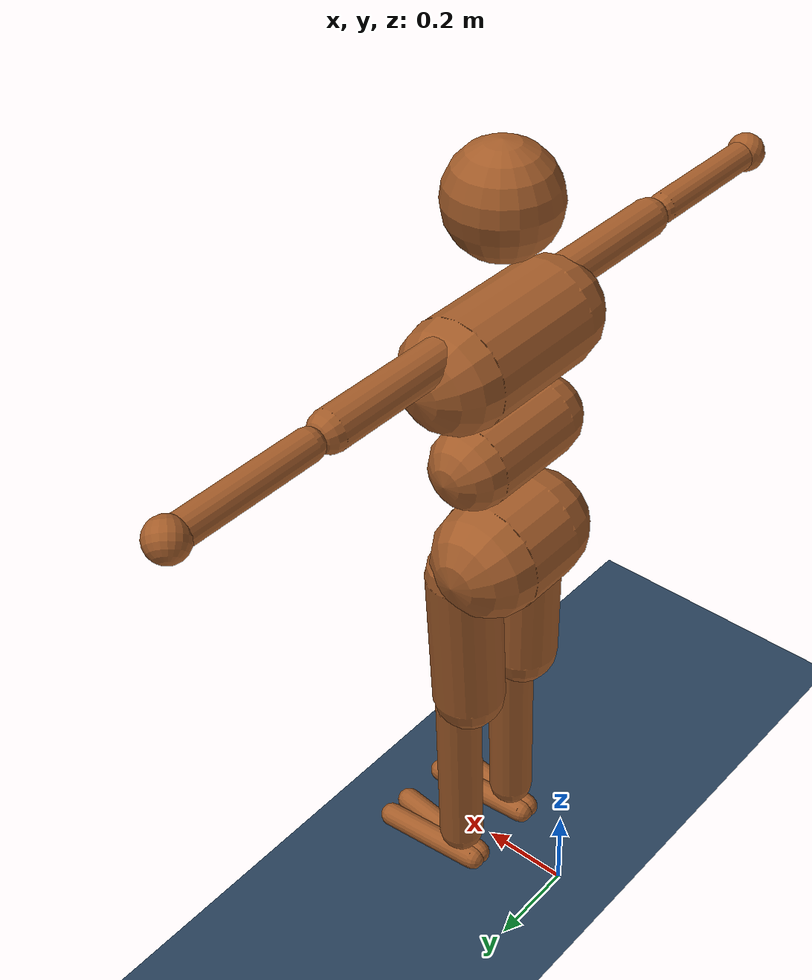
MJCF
<mujoco model="Alfi's Humanoid">
  <option timestep="0.002"/>
  <visual>
    <map force="0.1" zfar="30"/>
    <rgba haze="0.15 0.25 0.35 1"/>
    <global offwidth="2560" offheight="1440" elevation="-20" azimuth="120"/>
  </visual>
  <statistic center="0 0 0.7"/>
  <asset>
    <texture type="skybox" builtin="gradient" rgb1=".3 .5 .7" rgb2="0 0 0" width="32" height="512"/>
    <texture name="body" type="cube" builtin="flat" mark="cross" width="128" height="128" rgb1="0.8 0.6 0.4" rgb2="0.8 0.6 0.4" markrgb="1 1 1" random="0.01"/>
    <material name="body" texture="body" texuniform="true" rgba="0.8 0.6 .4 1"/>
    <texture name="grid" type="2d" builtin="checker" width="512" height="512" rgb1=".1 .2 .3" rgb2=".2 .3 .4"/>
    <material name="grid" texture="grid" texrepeat="1 1" texuniform="true" reflectance=".2"/>
  </asset>

  <default>
    <motor ctrlrange="-1 1" ctrllimited="true"/>
    <default class="body">
      <!-- geoms -->
      <geom type="capsule" condim="1" friction=".7" solimp=".9 .99 .003" solref=".015 1" material="body"/>
      <default class="thigh">
        <geom size=".078"/>
      </default>
      <default class="shin">
        <geom fromto="0 0 0 0 0 -.40182"  size=".05"/>
      </default>
      <default class="foot">
        <geom size=".027" />
        <default class="foot1">
          <geom fromto="-.04 -.01 0 .19 -.03 0"/>
        </default>
        <default class="foot2">
          <geom fromto="-.04 .01 0 .19  .03 0"/>
        </default>
      </default>
      <default class="arm_upper">
        <geom size=".04"/>
      </default>
      <default class="arm_lower">
        <geom size=".031"/>
      </default>
      <default class="hand">
        <geom type="sphere" size=".04"/>
      </default>

      <!-- joints -->
      <joint type="hinge" damping="10" stiffness="5" armature=".01" limited="true" solimplimit="0 .99 .01"/>
      <default class="joint_big">
        <joint damping="5" stiffness="10"/>
        <default class="hip_x">
          <joint range="-30 10"/>
        </default>
        <default class="hip_z">
          <joint range="-60 35"/>
        </default>
        <default class="hip_y">
          <joint axis="0 1 0" range="-150 20"/>
        </default>
        <default class="joint_big_stiff">
          <joint stiffness="20"/>
        </default>
      </default>
      <default class="knee">
        <joint pos="0 0 .02" axis="0 -1 0" range="-160 2"/>
      </default>
      <default class="ankle">
        <joint range="-50 50"/>
        <default class="ankle_y">
          <joint pos="0 0 .08" axis="0 1 0" stiffness="62" damping="60"/>
        </default>
        <default class="ankle_x">
          <joint pos="0 0 .04" stiffness="13"/>
        </default>
      </default>
      <default class="shoulder">
        <joint range="-85 60" damping=".2" stiffness="1"/>
      </default>
      <default class="elbow">
        <joint range="-160 0" stiffness="0"/>
      </default>
    </default>
  </default>

  <worldbody>
    <geom name="floor" size="0 0 .05" type="plane" material="grid" condim="3"/>
    <light name="spotlight" mode="targetbodycom" target="torax" diffuse=".8 .8 .8" specular="0.3 0.3 0.3" pos="0 -6 4" cutoff="30"/>
    <body name="torax" pos="0.165 0 1.396" childclass="body">
      <light name="top" pos="0 0 2" mode="trackcom"/>
      <camera name="back" pos="-3 0 1" xyaxes="0 -1 0 1 0 2" mode="trackcom"/>
      <camera name="side" pos="0 -3 1" xyaxes="1 0 0 0 1 2" mode="trackcom"/>
      <freejoint name="root"/>
      <geom name="torax" fromto="0 -.12875 0 0 .12875 0" size=".11125"/>
      <inertial pos="0 0 0" mass="16.3625" diaginertia="0.673745 0.1234615 0.673745"/>
      <site name="imu" type="sphere" rgba="5 5 5 5"  pos="0 0 0"  size="0.01"/>
      <body name="abdomen">
        <geom name="abdomen" fromto="-.01 -.10125 -.215 -.01 .10125 -.215" size=".085"/>
        <inertial pos="-.01 0 -.215" mass="7.4336" diaginertia="0.1841313 0.0326356 .1841313"/>
      </body>
      <body name="head" pos="0 0 .290">
        <geom name="head" type="sphere" size=".110"/>
        <camera name="egocentric" pos=".09 0 0" xyaxes="0 -1 0 .1 0 1" fovy="80"/>
        <inertial pos="0 0 0" mass="5.6" diaginertia="0.027104 0.027104 0.027104"/>
      </body>
      <body name="pelvis" pos="-0.02 0 -.46">
        <joint name="abdomen_z" pos="0 0 .16" axis="0 0 1" range="-45 3" class="joint_big_stiff"/>
        <joint name="abdomen_y" pos="0 0 .16" axis="0 1 0" range="-75 30" class="joint_big"/>
        <joint name="abdomen_x" pos="0 0 .1" axis="1 0 0" range="-35 35" class="joint_big"/>
        <geom name="butt" fromto="-.0 -.065 0 -.0 .065 0" size=".12"/>
        <inertial pos="0 0 0" mass="13.603889" diaginertia="0.331667 0.130372 0.331667"/>
        <site name="com_accelerometer" type="sphere" rgba="5 5 5 5"  pos="0 0 0"  size="0.01"/>
        <body name="thigh_right" pos="0.04 -.1 -.04">
          <joint name="hip_x_right" axis="1 0 0" class="hip_x" pos="0 0 0.041865"/>
          <joint name="hip_z_right" axis="0 0 1" class="hip_z" pos="0 0 0.041865"/>
          <joint name="hip_y_right" class="hip_y" pos="0 0 0.041865"/>
          <geom name="thigh_right" fromto="0 0 0 0 .01 -.34" class="thigh"/>
          <inertial pos="0 0.005  -0.17" mass="9.6" diaginertia="0.39782263 0.39782263 0.03330608" euler="1.7 0 0"/>
          <body name="shin_right" pos="0.03 .01 -.4" >
            <joint name="knee_right" class="knee"/>
            <geom name="shin_right" class="shin"/>
            <inertial pos="0 0 -0.20091" mass="4" diaginertia="0.14992478 0.14992478 0.00542691"/>
            <body name="foot_right" pos="0 0 -.469">
              <joint name="ankle_y_right" class="ankle_y" pos="0 0 0.06"/>
              <joint name="ankle_x_right" class="ankle_x" axis="1 0 0" pos="0 0 0.06"/>
              <geom name="foot1_right" class="foot1"/>
              <geom name="foot2_right" class="foot2"/>
              <inertial pos="0.075 0 0" mass="1.6" diaginertia="0.009168 0.008528 0.008528"/>
            </body>
          </body>
        </body>
        <body name="thigh_left" pos="0.04 .1 -.04">
          <joint name="hip_x_left" axis="-1 0 0" class="hip_x" pos="0 0 0.041865"/>
          <joint name="hip_z_left" axis="0 0 -1" class="hip_z" pos="0 0 0.041865"/>
          <joint name="hip_y_left" class="hip_y" pos="0 0 0.041865"/>
          <geom name="thigh_left" fromto="0 0 0 0 -.01 -.34" class="thigh"/>
          <inertial pos="0 -0.005  -0.17" mass="9.6" diaginertia="0.39782263 0.39782263 0.03330608" euler="-1.7 0 0"/>
          <body name="shin_left" pos="0.03 -.01 -.4">
            <joint name="knee_left" class="knee"/>
            <inertial pos="0 0 -0.20091" mass="4" diaginertia="0.14992478 0.14992478 0.00542691"/>
            <geom name="shin_left"  class="shin"/>
            <body name="foot_left" pos="0 0 -.469">
              <joint name="ankle_y_left" class="ankle_y" pos="0 0 0.06"/>
              <joint name="ankle_x_left" class="ankle_x" axis="-1 0 0" pos="0 0 0.06"/>
              <geom name="foot1_left" class="foot1"/>
              <geom name="foot2_left" class="foot2"/>
              <inertial pos="0.075 0 0" mass="1.6" diaginertia="0.009168  0.008528 0.008528"/>
            </body>
          </body>
        </body>
      </body>
      <body name="upper_arm_right" pos="0 -.17 .06">
        <joint name="shoulder1_right" axis="0 0 1"  class="shoulder"/>
        <joint name="shoulder2_right" axis="-1 0 0" class="shoulder"/>
        <geom name="upper_arm_right" fromto="0 0 0 0 -.277 0" class="arm_upper"/>
        <inertial pos="0 -0.1385 0" mass="2.4" diaginertia="0.0471207 0.00210599 0.0471207"/>
        <body name="lower_arm_right" pos=".0 -0.318 0">
          <joint name="elbow_right" axis="1 0 0" class="elbow"/>
          <geom name="lower_arm_right" fromto=".0 -.01 .0 .0 -.287 .0" class="arm_lower"/>
          <inertial pos="0 -0.1485 0" mass="1.6" diaginertia="0.02667468 0.00082869 0.02667468"/>
          <body name="hand_right" pos=".0 -.312 0">
            <geom name="hand_right" zaxis="1 1 1" class="hand"/>
            <inertial pos="0 0 0" mass="0.8" diaginertia="0.00512 0.00512 0.00512"/>
          </body>
        </body>
      </body>
      <body name="upper_arm_left" pos="0 .17 .06">
        <joint name="shoulder1_left" axis="0 0 1" class="shoulder"/>
        <joint name="shoulder2_left" axis="1 0 0"  class="shoulder"/>
        <geom name="upper_arm_left" fromto="0 0 0 0 0.277 0" class="arm_upper"/>
        <inertial pos="0 0.1385 0" mass="2.4" diaginertia="0.0471207 0.00210599 0.0471207"/>
        <body name="lower_arm_left" pos="0 0.318 0">
          <joint name="elbow_left" axis="1 0 0" class="elbow"/>
          <geom name="lower_arm_left" fromto=".0 .01 .0 0 .287 .0" class="arm_lower"/>
          <inertial pos="0 0.1485 0" mass="1.6" diaginertia="0.02667468 0.00082869 0.02667468"/>
          <body name="hand_left" pos="0 .312 .0">
            <geom name="hand_left" zaxis="1 -1 1" class="hand"/>
            <inertial pos="0 0 0" mass="0.8" diaginertia="0.00512 0.00512 0.00512"/>
          </body>
        </body>
      </body>
    </body>
  </worldbody>

  <contact>
    <exclude body1="thigh_right" body2="pelvis"/>
    <exclude body1="thigh_left" body2="pelvis"/>
    <exclude body1="foot_left" body2="shin_left"/>
    <exclude body1="shin_left" body2="thigh_left"/>
    <exclude body1="foot_right" body2="shin_right"/>
    <exclude body1="shin_right" body2="thigh_right"/>
  </contact>

  <tendon>
    <fixed name="hamstring_right" limited="true" range="-0.3 2">
      <joint joint="hip_y_right" coef=".5"/>
      <joint joint="knee_right" coef="-.5"/>
    </fixed>
    <fixed name="hamstring_left" limited="true" range="-0.3 2">
      <joint joint="hip_y_left" coef=".5"/>
      <joint joint="knee_left" coef="-.5"/>
    </fixed>
  </tendon>

  <actuator>
    <motor name="abdomen_z"       gear="100"  joint="abdomen_z"/>
    <motor name="abdomen_y"       gear="100"  joint="abdomen_y"/>
    <motor name="abdomen_x"       gear="100"  joint="abdomen_x"/>
    <motor name="hip_x_right"     gear="100"  joint="hip_x_right"/>
    <motor name="hip_z_right"     gear="100"  joint="hip_z_right"/>
    <motor name="hip_y_right"     gear="300" joint="hip_y_right"/>
    <motor name="knee_right"      gear="200"  joint="knee_right"/>
    <motor name="ankle_y_right"   gear="50"  joint="ankle_y_right"/>
    <motor name="ankle_x_right"   gear="50"  joint="ankle_x_right"/>
    <motor name="hip_x_left"      gear="100"  joint="hip_x_left"/>
    <motor name="hip_z_left"      gear="100"  joint="hip_z_left"/>
    <motor name="hip_y_left"      gear="300" joint="hip_y_left"/>
    <motor name="knee_left"       gear="200"  joint="knee_left"/>
    <motor name="ankle_y_left"    gear="50"  joint="ankle_y_left"/>
    <motor name="ankle_x_left"    gear="50"  joint="ankle_x_left"/>
    <motor name="shoulder1_right" gear="25"  joint="shoulder1_right"/>
    <motor name="shoulder2_right" gear="25"  joint="shoulder2_right"/>
    <motor name="elbow_right"     gear="25"  joint="elbow_right"/>
    <motor name="shoulder1_left"  gear="25"  joint="shoulder1_left"/>
    <motor name="shoulder2_left"  gear="25"  joint="shoulder2_left"/>
    <motor name="elbow_left"      gear="25"  joint="elbow_left"/>
  </actuator>

</mujoco>
